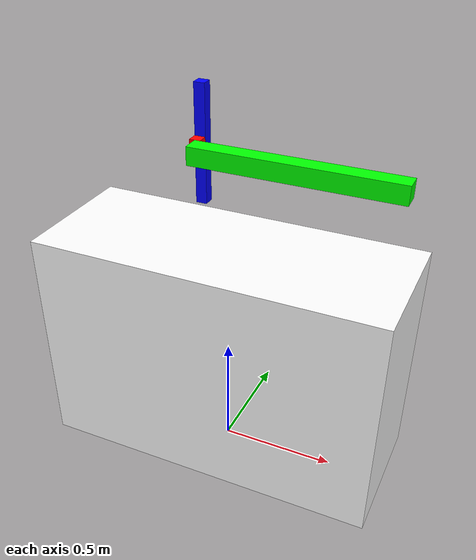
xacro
<?xml version="1.0"?>
<robot xmlns:xacro="http://www.ros.org/wiki/xacro"  name="robot">

    <xacro:include filename="include.xacro" />

    <link name="world"></link>

    <joint name="base_joint" type="fixed">
        <origin xyz="0 0 0.5" rpy="0 0 0"/>
        <parent link="world"/>
        <child link="base_link"/>
    </joint>

    <link name="base_link">
        <visual>
            <origin xyz="0 0 0" rpy="0 0 0"/>
            <geometry>
                <box size="1.5 0.6 1" />
            </geometry>
            <material name="white">
                <color rgba="1 1 1 1"/>
            </material>
        </visual>
        <collision>
            <origin xyz="0 0 0" rpy="0 0 0"/>
            <geometry>
                <box size="1.5 0.6 1" />
            </geometry>
        </collision>
        <xacro:inertial_box mass="30" x="1.5" y="0.6" z="1">
            <origin xyz="0 0 0" rpy="0 0 0"/>
        </xacro:inertial_box>
    </link>

    <joint name="y_joint" type="prismatic">
        <origin xyz="0.37 -0.3 1" rpy="0 0 0"/>
        <parent link="base_link"/>
        <child link="y_link"/>
        <axis xyz="0 1 0"/>
        <limit lower="0" upper=".6" velocity="100" effort="100"/>
        <dynamics damping="10.0" friction="10.0" />
    </joint>

    <link name="y_link">
        <visual>
            <origin xyz="0 0 0" rpy="0 0 0"/>
            <geometry>
                <box size="0.74 0.065 0.065" />
            </geometry>
            <material name="green" />
        </visual>
        <collision>
            <origin xyz="0 0 0" rpy="0 0 0"/>
            <geometry>
                <box size="0.74 0.065 0.065" />
            </geometry>
        </collision>
        <xacro:inertial_box mass="1" x="0.74" y="0.065" z="0.065">
            <origin xyz="0 0 0" rpy="0 0 0"/>
        </xacro:inertial_box>
    </link>

    <joint name="x_joint" type="prismatic">
        <origin xyz="-0.37 0.0525 0" rpy="0 0 0"/>
        <parent link="y_link"/>
        <child link="x_link"/>
        <axis xyz="1 0 0"/>
        <limit lower="0" upper=".74" velocity="100" effort="100"/>
        <dynamics damping="10.0" friction="10.0" />
    </joint>

    <link name="x_link">
        <visual>
            <origin xyz="0 0 0" rpy="0 0 0"/>
            <geometry>
                <box size="0.04 0.04 0.065" />
            </geometry>
            <material name="red" />
        </visual>
        <collision>
            <origin xyz="0 0 0" rpy="0 0 0"/>
            <geometry>
                <box size="0.04 0.04 0.065" />
            </geometry>
        </collision>
        <xacro:inertial_box mass="1" x="0.04" y="0.04" z="0.065">
            <origin xyz="0 0 0" rpy="0 0 0"/>
        </xacro:inertial_box>
    </link>

    <joint name="z_joint" type="prismatic">
        <origin xyz="0 0.04 0" rpy="0 0 0"/>
        <parent link="x_link"/>
        <child link="z_link"/>
        <axis xyz="0 0 1"/>
        <limit lower="-0.211" upper="0.211" velocity="100" effort="100"/>
        <dynamics damping="10.0" friction="10.0" />
    </joint>

    <link name="z_link">
        <visual>
            <origin xyz="0 0 0" rpy="0 0 0"/>
            <geometry>
                <box size="0.04 0.04 0.422" />
            </geometry>
            <material name="blue" />
        </visual>
        <collision>
            <origin xyz="0 0 0" rpy="0 0 0"/>
            <geometry>
                <box size="0.04 0.04 0.422" />
            </geometry>
        </collision>
        <xacro:inertial_box mass="1" x="0.04" y="0.04" z="0.065">
            <origin xyz="0 0 0" rpy="0 0 0"/>
        </xacro:inertial_box>
    </link>

    <xacro:include filename="gazebo.xacro" />

</robot>

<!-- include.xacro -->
<robot xmlns:xacro="http://www.ros.org/wiki/xacro" >

    <material name="white">
        <color rgba="1 1 1 1"/>
    </material>

    <material name="red">
        <color rgba="1 0 0 1"/>
    </material>

    <material name="blue">
        <color rgba="0 0 1 1"/>
    </material>

    <material name="green">
        <color rgba="0 1 0 1"/>
    </material>

    <xacro:macro name="inertial_box" params="mass x y z *origin">
        <inertial>
            <xacro:insert_block name="origin"/>
            <mass value="${mass}" />
            <inertia ixx="${(1/12) * mass * (y*y+z*z)}" ixy="0.0" ixz="0.0"
                    iyy="${(1/12) * mass * (x*x+z*z)}" iyz="0.0"
                    izz="${(1/12) * mass * (x*x+y*y)}" />
        </inertial>
    </xacro:macro>

</robot>
